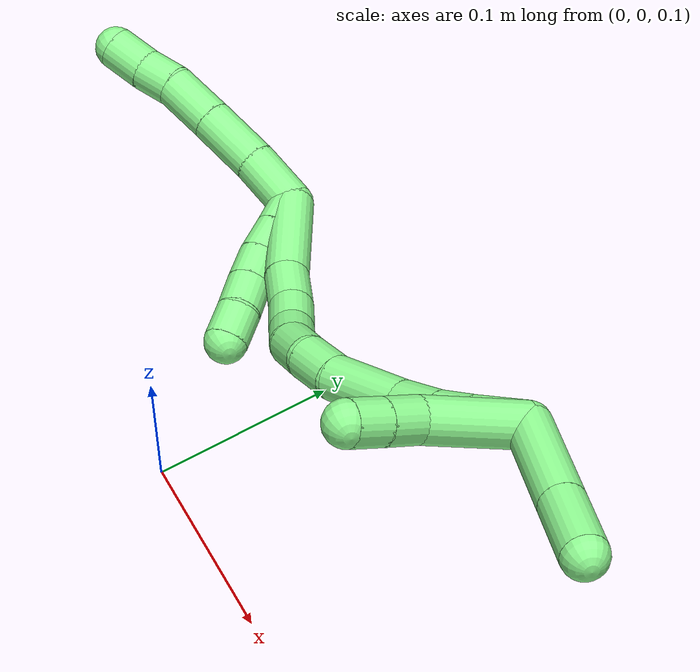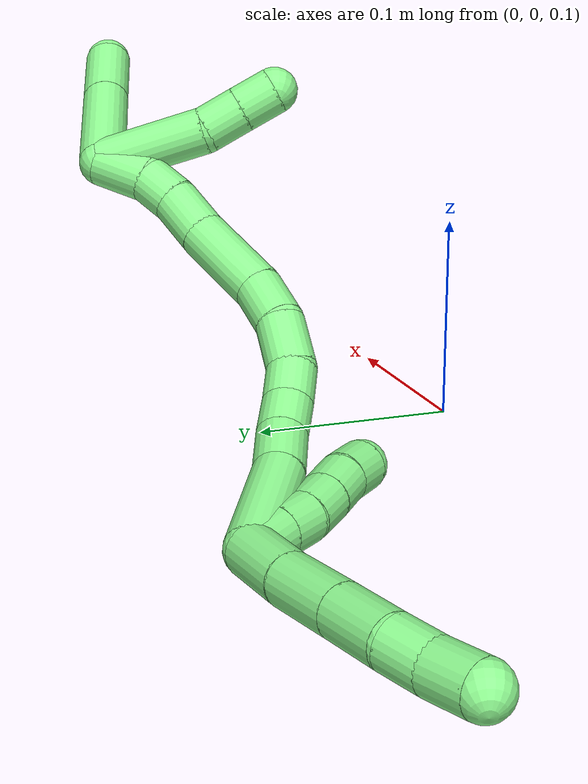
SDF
<sdf version="1.7">
 <world name="default">
  <model name="13">
   <static>0</static>
   <link name="13">
    <collision name="collision-cylinder-e_1_2_8">
     <pose>-0.005867 0.008015 -0.014325 -2.63146 -0.343252 1.17335</pose>
     <geometry><cylinder><radius>0.0125</radius><length>0.034863</length></cylinder></geometry>
     <surface>
      <friction><ode><mu>1.16</mu><mu2>1.16</mu2><slip1>0</slip1><slip2>0</slip2></ode></friction>
      <contact><ode><kp>1e+06</kp><kd>1</kd><max_vel>0</max_vel><min_depth>0.001</min_depth></ode></contact>
     </surface>
    </collision>
    <visual name="visual-cylinder-e_1_2_8">
     <pose>-0.005867 0.008015 -0.014325 -2.63146 -0.343252 1.17335</pose>
     <geometry><cylinder><radius>0.0125</radius><length>0.034863</length></cylinder></geometry>
     <material><ambient>0.564706 0.984314 0.572549 1</ambient></material>
    </visual>
    <collision name="collision-cylinder-e_2_8_9">
     <pose>-0.019365 0.024979 -0.043236 -2.59129 -0.419518 1.29224</pose>
     <geometry><cylinder><radius>0.0125</radius><length>0.037475</length></cylinder></geometry>
     <surface>
      <friction><ode><mu>1.16</mu><mu2>1.16</mu2><slip1>0</slip1><slip2>0</slip2></ode></friction>
      <contact><ode><kp>1e+06</kp><kd>1</kd><max_vel>0</max_vel><min_depth>0.001</min_depth></ode></contact>
     </surface>
    </collision>
    <visual name="visual-cylinder-e_2_8_9">
     <pose>-0.019365 0.024979 -0.043236 -2.59129 -0.419518 1.29224</pose>
     <geometry><cylinder><radius>0.0125</radius><length>0.037475</length></cylinder></geometry>
     <material><ambient>0.564706 0.984314 0.572549 1</ambient></material>
    </visual>
    <collision name="collision-cylinder-e_3_9_10">
     <pose>-0.03376 0.041429 -0.07044 -2.6053 -0.431712 1.34709</pose>
     <geometry><cylinder><radius>0.0125</radius><length>0.032324</length></cylinder></geometry>
     <surface>
      <friction><ode><mu>1.16</mu><mu2>1.16</mu2><slip1>0</slip1><slip2>0</slip2></ode></friction>
      <contact><ode><kp>1e+06</kp><kd>1</kd><max_vel>0</max_vel><min_depth>0.001</min_depth></ode></contact>
     </surface>
    </collision>
    <visual name="visual-cylinder-e_3_9_10">
     <pose>-0.03376 0.041429 -0.07044 -2.6053 -0.431712 1.34709</pose>
     <geometry><cylinder><radius>0.0125</radius><length>0.032324</length></cylinder></geometry>
     <material><ambient>0.564706 0.984314 0.572549 1</ambient></material>
    </visual>
    <collision name="collision-cylinder-e_4_10_11">
     <pose>-0.046777 0.052733 -0.090894 -2.68962 -0.622731 1.90097</pose>
     <geometry><cylinder><radius>0.0125</radius><length>0.021445</length></cylinder></geometry>
     <surface>
      <friction><ode><mu>1.16</mu><mu2>1.16</mu2><slip1>0</slip1><slip2>0</slip2></ode></friction>
      <contact><ode><kp>1e+06</kp><kd>1</kd><max_vel>0</max_vel><min_depth>0.001</min_depth></ode></contact>
     </surface>
    </collision>
    <visual name="visual-cylinder-e_4_10_11">
     <pose>-0.046777 0.052733 -0.090894 -2.68962 -0.622731 1.90097</pose>
     <geometry><cylinder><radius>0.0125</radius><length>0.021445</length></cylinder></geometry>
     <material><ambient>0.564706 0.984314 0.572549 1</ambient></material>
    </visual>
    <collision name="collision-cylinder-e_5_11_6">
     <pose>-0.059305 0.062097 -0.10724 -2.56289 -0.552942 1.52275</pose>
     <geometry><cylinder><radius>0.0125</radius><length>0.023892</length></cylinder></geometry>
     <surface>
      <friction><ode><mu>1.16</mu><mu2>1.16</mu2><slip1>0</slip1><slip2>0</slip2></ode></friction>
      <contact><ode><kp>1e+06</kp><kd>1</kd><max_vel>0</max_vel><min_depth>0.001</min_depth></ode></contact>
     </surface>
    </collision>
    <visual name="visual-cylinder-e_5_11_6">
     <pose>-0.059305 0.062097 -0.10724 -2.56289 -0.552942 1.52275</pose>
     <geometry><cylinder><radius>0.0125</radius><length>0.023892</length></cylinder></geometry>
     <material><ambient>0.564706 0.984314 0.572549 1</ambient></material>
    </visual>
    <collision name="collision-cylinder-e_1_2_12">
     <pose>-0.006495 -0.001462 0.007462 0.193452 -0.706925 -0.071568</pose>
     <geometry><cylinder><radius>0.0125</radius><length>0.02</length></cylinder></geometry>
     <surface>
      <friction><ode><mu>1.16</mu><mu2>1.16</mu2><slip1>0</slip1><slip2>0</slip2></ode></friction>
      <contact><ode><kp>1e+06</kp><kd>1</kd><max_vel>0</max_vel><min_depth>0.001</min_depth></ode></contact>
     </surface>
    </collision>
    <visual name="visual-cylinder-e_1_2_12">
     <pose>-0.006495 -0.001462 0.007462 0.193452 -0.706925 -0.071568</pose>
     <geometry><cylinder><radius>0.0125</radius><length>0.02</length></cylinder></geometry>
     <material><ambient>0.564706 0.984314 0.572549 1</ambient></material>
    </visual>
    <collision name="collision-cylinder-e_2_12_13">
     <pose>-0.019814 -0.004524 0.022056 0.220778 -0.751026 -0.087335</pose>
     <geometry><cylinder><radius>0.0125</radius><length>0.02</length></cylinder></geometry>
     <surface>
      <friction><ode><mu>1.16</mu><mu2>1.16</mu2><slip1>0</slip1><slip2>0</slip2></ode></friction>
      <contact><ode><kp>1e+06</kp><kd>1</kd><max_vel>0</max_vel><min_depth>0.001</min_depth></ode></contact>
     </surface>
    </collision>
    <visual name="visual-cylinder-e_2_12_13">
     <pose>-0.019814 -0.004524 0.022056 0.220778 -0.751026 -0.087335</pose>
     <geometry><cylinder><radius>0.0125</radius><length>0.02</length></cylinder></geometry>
     <material><ambient>0.564706 0.984314 0.572549 1</ambient></material>
    </visual>
    <collision name="collision-cylinder-e_3_13_14">
     <pose>-0.032184 -0.00766 0.037367 0.185474 -0.587891 -0.056292</pose>
     <geometry><cylinder><radius>0.0125</radius><length>0.02</length></cylinder></geometry>
     <surface>
      <friction><ode><mu>1.16</mu><mu2>1.16</mu2><slip1>0</slip1><slip2>0</slip2></ode></friction>
      <contact><ode><kp>1e+06</kp><kd>1</kd><max_vel>0</max_vel><min_depth>0.001</min_depth></ode></contact>
     </surface>
    </collision>
    <visual name="visual-cylinder-e_3_13_14">
     <pose>-0.032184 -0.00766 0.037367 0.185474 -0.587891 -0.056292</pose>
     <geometry><cylinder><radius>0.0125</radius><length>0.02</length></cylinder></geometry>
     <material><ambient>0.564706 0.984314 0.572549 1</ambient></material>
    </visual>
    <collision name="collision-cylinder-e_4_14_15">
     <pose>-0.042863 -0.010699 0.053994 0.176232 -0.539069 -0.048802</pose>
     <geometry><cylinder><radius>0.0125</radius><length>0.02</length></cylinder></geometry>
     <surface>
      <friction><ode><mu>1.16</mu><mu2>1.16</mu2><slip1>0</slip1><slip2>0</slip2></ode></friction>
      <contact><ode><kp>1e+06</kp><kd>1</kd><max_vel>0</max_vel><min_depth>0.001</min_depth></ode></contact>
     </surface>
    </collision>
    <visual name="visual-cylinder-e_4_14_15">
     <pose>-0.042863 -0.010699 0.053994 0.176232 -0.539069 -0.048802</pose>
     <geometry><cylinder><radius>0.0125</radius><length>0.02</length></cylinder></geometry>
     <material><ambient>0.564706 0.984314 0.572549 1</ambient></material>
    </visual>
    <collision name="collision-cylinder-e_5_15_5">
     <pose>-0.053955 -0.014642 0.070095 0.308534 -0.638362 -0.102691</pose>
     <geometry><cylinder><radius>0.0125</radius><length>0.02</length></cylinder></geometry>
     <surface>
      <friction><ode><mu>1.16</mu><mu2>1.16</mu2><slip1>0</slip1><slip2>0</slip2></ode></friction>
      <contact><ode><kp>1e+06</kp><kd>1</kd><max_vel>0</max_vel><min_depth>0.001</min_depth></ode></contact>
     </surface>
    </collision>
    <visual name="visual-cylinder-e_5_15_5">
     <pose>-0.053955 -0.014642 0.070095 0.308534 -0.638362 -0.102691</pose>
     <geometry><cylinder><radius>0.0125</radius><length>0.02</length></cylinder></geometry>
     <material><ambient>0.564706 0.984314 0.572549 1</ambient></material>
    </visual>
    <collision name="collision-cylinder-e_1_2_16">
     <pose>-0.008168 -0.003306 0.027456 0.119826 -0.287193 -0.017346</pose>
     <geometry><cylinder><radius>0.0125</radius><length>0.05767</length></cylinder></geometry>
     <surface>
      <friction><ode><mu>1.16</mu><mu2>1.16</mu2><slip1>0</slip1><slip2>0</slip2></ode></friction>
      <contact><ode><kp>1e+06</kp><kd>1</kd><max_vel>0</max_vel><min_depth>0.001</min_depth></ode></contact>
     </surface>
    </collision>
    <visual name="visual-cylinder-e_1_2_16">
     <pose>-0.008168 -0.003306 0.027456 0.119826 -0.287193 -0.017346</pose>
     <geometry><cylinder><radius>0.0125</radius><length>0.05767</length></cylinder></geometry>
     <material><ambient>0.564706 0.984314 0.572549 1</ambient></material>
    </visual>
    <collision name="collision-cylinder-e_2_16_17">
     <pose>-0.017936 -0.00737 0.067924 0.058236 -0.122174 -0.003563</pose>
     <geometry><cylinder><radius>0.0125</radius><length>0.026265</length></cylinder></geometry>
     <surface>
      <friction><ode><mu>1.16</mu><mu2>1.16</mu2><slip1>0</slip1><slip2>0</slip2></ode></friction>
      <contact><ode><kp>1e+06</kp><kd>1</kd><max_vel>0</max_vel><min_depth>0.001</min_depth></ode></contact>
     </surface>
    </collision>
    <visual name="visual-cylinder-e_2_16_17">
     <pose>-0.017936 -0.00737 0.067924 0.058236 -0.122174 -0.003563</pose>
     <geometry><cylinder><radius>0.0125</radius><length>0.026265</length></cylinder></geometry>
     <material><ambient>0.564706 0.984314 0.572549 1</ambient></material>
    </visual>
    <collision name="collision-cylinder-e_3_17_18">
     <pose>-0.021327 -0.007355 0.09146 -0.073361 -0.168046 0.006181</pose>
     <geometry><cylinder><radius>0.0125</radius><length>0.021405</length></cylinder></geometry>
     <surface>
      <friction><ode><mu>1.16</mu><mu2>1.16</mu2><slip1>0</slip1><slip2>0</slip2></ode></friction>
      <contact><ode><kp>1e+06</kp><kd>1</kd><max_vel>0</max_vel><min_depth>0.001</min_depth></ode></contact>
     </surface>
    </collision>
    <visual name="visual-cylinder-e_3_17_18">
     <pose>-0.021327 -0.007355 0.09146 -0.073361 -0.168046 0.006181</pose>
     <geometry><cylinder><radius>0.0125</radius><length>0.021405</length></cylinder></geometry>
     <material><ambient>0.564706 0.984314 0.572549 1</ambient></material>
    </visual>
    <collision name="collision-cylinder-e_4_18_19">
     <pose>-0.024038 -0.00377 0.111552 -0.285874 -0.092134 0.013269</pose>
     <geometry><cylinder><radius>0.0125</radius><length>0.020032</length></cylinder></geometry>
     <surface>
      <friction><ode><mu>1.16</mu><mu2>1.16</mu2><slip1>0</slip1><slip2>0</slip2></ode></friction>
      <contact><ode><kp>1e+06</kp><kd>1</kd><max_vel>0</max_vel><min_depth>0.001</min_depth></ode></contact>
     </surface>
    </collision>
    <visual name="visual-cylinder-e_4_18_19">
     <pose>-0.024038 -0.00377 0.111552 -0.285874 -0.092134 0.013269</pose>
     <geometry><cylinder><radius>0.0125</radius><length>0.020032</length></cylinder></geometry>
     <material><ambient>0.564706 0.984314 0.572549 1</ambient></material>
    </visual>
    <collision name="collision-cylinder-e_5_19_20">
     <pose>-0.021866 0.002538 0.133612 -0.272837 0.234131 -0.032284</pose>
     <geometry><cylinder><radius>0.0125</radius><length>0.02667</length></cylinder></geometry>
     <surface>
      <friction><ode><mu>1.16</mu><mu2>1.16</mu2><slip1>0</slip1><slip2>0</slip2></ode></friction>
      <contact><ode><kp>1e+06</kp><kd>1</kd><max_vel>0</max_vel><min_depth>0.001</min_depth></ode></contact>
     </surface>
    </collision>
    <visual name="visual-cylinder-e_5_19_20">
     <pose>-0.021866 0.002538 0.133612 -0.272837 0.234131 -0.032284</pose>
     <geometry><cylinder><radius>0.0125</radius><length>0.02667</length></cylinder></geometry>
     <material><ambient>0.564706 0.984314 0.572549 1</ambient></material>
    </visual>
    <collision name="collision-cylinder-e_6_20_21">
     <pose>-0.013834 0.006245 0.158047 -0.017747 0.391971 -0.003523</pose>
     <geometry><cylinder><radius>0.0125</radius><length>0.025853</length></cylinder></geometry>
     <surface>
      <friction><ode><mu>1.16</mu><mu2>1.16</mu2><slip1>0</slip1><slip2>0</slip2></ode></friction>
      <contact><ode><kp>1e+06</kp><kd>1</kd><max_vel>0</max_vel><min_depth>0.001</min_depth></ode></contact>
     </surface>
    </collision>
    <visual name="visual-cylinder-e_6_20_21">
     <pose>-0.013834 0.006245 0.158047 -0.017747 0.391971 -0.003523</pose>
     <geometry><cylinder><radius>0.0125</radius><length>0.025853</length></cylinder></geometry>
     <material><ambient>0.564706 0.984314 0.572549 1</ambient></material>
    </visual>
    <collision name="collision-cylinder-e_7_21_22">
     <pose>0.004949 0.006486 0.189083 -0.001508 0.627466 -0.000489</pose>
     <geometry><cylinder><radius>0.0125</radius><length>0.047166</length></cylinder></geometry>
     <surface>
      <friction><ode><mu>1.16</mu><mu2>1.16</mu2><slip1>0</slip1><slip2>0</slip2></ode></friction>
      <contact><ode><kp>1e+06</kp><kd>1</kd><max_vel>0</max_vel><min_depth>0.001</min_depth></ode></contact>
     </surface>
    </collision>
    <visual name="visual-cylinder-e_7_21_22">
     <pose>0.004949 0.006486 0.189083 -0.001508 0.627466 -0.000489</pose>
     <geometry><cylinder><radius>0.0125</radius><length>0.047166</length></cylinder></geometry>
     <material><ambient>0.564706 0.984314 0.572549 1</ambient></material>
    </visual>
    <collision name="collision-cylinder-e_8_22_23">
     <pose>0.026356 0.008019 0.218856 -0.139841 0.611312 -0.044191</pose>
     <geometry><cylinder><radius>0.0125</radius><length>0.026346</length></cylinder></geometry>
     <surface>
      <friction><ode><mu>1.16</mu><mu2>1.16</mu2><slip1>0</slip1><slip2>0</slip2></ode></friction>
      <contact><ode><kp>1e+06</kp><kd>1</kd><max_vel>0</max_vel><min_depth>0.001</min_depth></ode></contact>
     </surface>
    </collision>
    <visual name="visual-cylinder-e_8_22_23">
     <pose>0.026356 0.008019 0.218856 -0.139841 0.611312 -0.044191</pose>
     <geometry><cylinder><radius>0.0125</radius><length>0.026346</length></cylinder></geometry>
     <material><ambient>0.564706 0.984314 0.572549 1</ambient></material>
    </visual>
    <collision name="collision-cylinder-e_9_23_24">
     <pose>0.041209 0.010129 0.236457 -0.087406 0.809785 -0.037479</pose>
     <geometry><cylinder><radius>0.0125</radius><length>0.020141</length></cylinder></geometry>
     <surface>
      <friction><ode><mu>1.16</mu><mu2>1.16</mu2><slip1>0</slip1><slip2>0</slip2></ode></friction>
      <contact><ode><kp>1e+06</kp><kd>1</kd><max_vel>0</max_vel><min_depth>0.001</min_depth></ode></contact>
     </surface>
    </collision>
    <visual name="visual-cylinder-e_9_23_24">
     <pose>0.041209 0.010129 0.236457 -0.087406 0.809785 -0.037479</pose>
     <geometry><cylinder><radius>0.0125</radius><length>0.020141</length></cylinder></geometry>
     <material><ambient>0.564706 0.984314 0.572549 1</ambient></material>
    </visual>
    <collision name="collision-cylinder-e_10_24_1">
     <pose>0.060686 0.008871 0.250476 0.256739 1.02856 0.1456</pose>
     <geometry><cylinder><radius>0.0125</radius><length>0.028451</length></cylinder></geometry>
     <surface>
      <friction><ode><mu>1.16</mu><mu2>1.16</mu2><slip1>0</slip1><slip2>0</slip2></ode></friction>
      <contact><ode><kp>1e+06</kp><kd>1</kd><max_vel>0</max_vel><min_depth>0.001</min_depth></ode></contact>
     </surface>
    </collision>
    <visual name="visual-cylinder-e_10_24_1">
     <pose>0.060686 0.008871 0.250476 0.256739 1.02856 0.1456</pose>
     <geometry><cylinder><radius>0.0125</radius><length>0.028451</length></cylinder></geometry>
     <material><ambient>0.564706 0.984314 0.572549 1</ambient></material>
    </visual>
    <collision name="collision-cylinder-e_1_1_25">
     <pose>0.047799 0.021619 0.25846 -1.51042 -1.04231 0.990946</pose>
     <geometry><cylinder><radius>0.0125</radius><length>0.058066</length></cylinder></geometry>
     <surface>
      <friction><ode><mu>1.16</mu><mu2>1.16</mu2><slip1>0</slip1><slip2>0</slip2></ode></friction>
      <contact><ode><kp>1e+06</kp><kd>1</kd><max_vel>0</max_vel><min_depth>0.001</min_depth></ode></contact>
     </surface>
    </collision>
    <visual name="visual-cylinder-e_1_1_25">
     <pose>0.047799 0.021619 0.25846 -1.51042 -1.04231 0.990946</pose>
     <geometry><cylinder><radius>0.0125</radius><length>0.058066</length></cylinder></geometry>
     <material><ambient>0.564706 0.984314 0.572549 1</ambient></material>
    </visual>
    <collision name="collision-cylinder-e_2_25_26">
     <pose>0.014402 0.04223 0.26254 -1.08112 -0.886106 0.554907</pose>
     <geometry><cylinder><radius>0.0125</radius><length>0.021497</length></cylinder></geometry>
     <surface>
      <friction><ode><mu>1.16</mu><mu2>1.16</mu2><slip1>0</slip1><slip2>0</slip2></ode></friction>
      <contact><ode><kp>1e+06</kp><kd>1</kd><max_vel>0</max_vel><min_depth>0.001</min_depth></ode></contact>
     </surface>
    </collision>
    <visual name="visual-cylinder-e_2_25_26">
     <pose>0.014402 0.04223 0.26254 -1.08112 -0.886106 0.554907</pose>
     <geometry><cylinder><radius>0.0125</radius><length>0.021497</length></cylinder></geometry>
     <material><ambient>0.564706 0.984314 0.572549 1</ambient></material>
    </visual>
    <collision name="collision-cylinder-e_3_26_4">
     <pose>-0.001884 0.053956 0.268613 -1.1054 -0.892994 0.574281</pose>
     <geometry><cylinder><radius>0.0125</radius><length>0.020437</length></cylinder></geometry>
     <surface>
      <friction><ode><mu>1.16</mu><mu2>1.16</mu2><slip1>0</slip1><slip2>0</slip2></ode></friction>
      <contact><ode><kp>1e+06</kp><kd>1</kd><max_vel>0</max_vel><min_depth>0.001</min_depth></ode></contact>
     </surface>
    </collision>
    <visual name="visual-cylinder-e_3_26_4">
     <pose>-0.001884 0.053956 0.268613 -1.1054 -0.892994 0.574281</pose>
     <geometry><cylinder><radius>0.0125</radius><length>0.020437</length></cylinder></geometry>
     <material><ambient>0.564706 0.984314 0.572549 1</ambient></material>
    </visual>
    <collision name="collision-cylinder-e_1_1_27">
     <pose>0.072843 0.006998 0.287949 0.000298 -0.000921 0</pose>
     <geometry><cylinder><radius>0.0125</radius><length>0.060746</length></cylinder></geometry>
     <surface>
      <friction><ode><mu>1.16</mu><mu2>1.16</mu2><slip1>0</slip1><slip2>0</slip2></ode></friction>
      <contact><ode><kp>1e+06</kp><kd>1</kd><max_vel>0</max_vel><min_depth>0.001</min_depth></ode></contact>
     </surface>
    </collision>
    <visual name="visual-cylinder-e_1_1_27">
     <pose>0.072843 0.006998 0.287949 0.000298 -0.000921 0</pose>
     <geometry><cylinder><radius>0.0125</radius><length>0.060746</length></cylinder></geometry>
     <material><ambient>0.564706 0.984314 0.572549 1</ambient></material>
    </visual>
    <collision name="collision-cylinder-e_2_27_3">
     <pose>0.072781 0.00752 0.337942 -0.027059 -0.00177 2.4e-05</pose>
     <geometry><cylinder><radius>0.0125</radius><length>0.039254</length></cylinder></geometry>
     <surface>
      <friction><ode><mu>1.16</mu><mu2>1.16</mu2><slip1>0</slip1><slip2>0</slip2></ode></friction>
      <contact><ode><kp>1e+06</kp><kd>1</kd><max_vel>0</max_vel><min_depth>0.001</min_depth></ode></contact>
     </surface>
    </collision>
    <visual name="visual-cylinder-e_2_27_3">
     <pose>0.072781 0.00752 0.337942 -0.027059 -0.00177 2.4e-05</pose>
     <geometry><cylinder><radius>0.0125</radius><length>0.039254</length></cylinder></geometry>
     <material><ambient>0.564706 0.984314 0.572549 1</ambient></material>
    </visual>
    <collision name="collision-sphere-3">
     <pose>0.072746 0.008051 0.357562 0 -0 0</pose>
     <geometry><sphere><radius>0.0125</radius></sphere></geometry>
     <surface>
      <friction><ode><mu>1.16</mu><mu2>1.16</mu2><slip1>0</slip1><slip2>0</slip2></ode></friction>
      <contact><ode><kp>1e+06</kp><kd>1</kd><max_vel>0</max_vel><min_depth>0.001</min_depth></ode></contact>
     </surface>
    </collision>
    <visual name="visual-sphere-3">
     <pose>0.072746 0.008051 0.357562 0 -0 0</pose>
     <geometry><sphere><radius>0.0125</radius></sphere></geometry>
     <material><ambient>0.564706 0.984314 0.572549 1</ambient></material>
    </visual>
    <collision name="collision-sphere-27">
     <pose>0.072815 0.006988 0.318322 0 -0 0</pose>
     <geometry><sphere><radius>0.0125</radius></sphere></geometry>
     <surface>
      <friction><ode><mu>1.16</mu><mu2>1.16</mu2><slip1>0</slip1><slip2>0</slip2></ode></friction>
      <contact><ode><kp>1e+06</kp><kd>1</kd><max_vel>0</max_vel><min_depth>0.001</min_depth></ode></contact>
     </surface>
    </collision>
    <visual name="visual-sphere-27">
     <pose>0.072815 0.006988 0.318322 0 -0 0</pose>
     <geometry><sphere><radius>0.0125</radius></sphere></geometry>
     <material><ambient>0.564706 0.984314 0.572549 1</ambient></material>
    </visual>
    <collision name="collision-sphere-4">
     <pose>-0.009844 0.059682 0.271489 0 -0 0</pose>
     <geometry><sphere><radius>0.0125</radius></sphere></geometry>
     <surface>
      <friction><ode><mu>1.16</mu><mu2>1.16</mu2><slip1>0</slip1><slip2>0</slip2></ode></friction>
      <contact><ode><kp>1e+06</kp><kd>1</kd><max_vel>0</max_vel><min_depth>0.001</min_depth></ode></contact>
     </surface>
    </collision>
    <visual name="visual-sphere-4">
     <pose>-0.009844 0.059682 0.271489 0 -0 0</pose>
     <geometry><sphere><radius>0.0125</radius></sphere></geometry>
     <material><ambient>0.564706 0.984314 0.572549 1</ambient></material>
    </visual>
    <collision name="collision-sphere-26">
     <pose>0.006076 0.048229 0.265738 0 -0 0</pose>
     <geometry><sphere><radius>0.0125</radius></sphere></geometry>
     <surface>
      <friction><ode><mu>1.16</mu><mu2>1.16</mu2><slip1>0</slip1><slip2>0</slip2></ode></friction>
      <contact><ode><kp>1e+06</kp><kd>1</kd><max_vel>0</max_vel><min_depth>0.001</min_depth></ode></contact>
     </surface>
    </collision>
    <visual name="visual-sphere-26">
     <pose>0.006076 0.048229 0.265738 0 -0 0</pose>
     <geometry><sphere><radius>0.0125</radius></sphere></geometry>
     <material><ambient>0.564706 0.984314 0.572549 1</ambient></material>
    </visual>
    <collision name="collision-sphere-25">
     <pose>0.022727 0.036232 0.259343 0 -0 0</pose>
     <geometry><sphere><radius>0.0125</radius></sphere></geometry>
     <surface>
      <friction><ode><mu>1.16</mu><mu2>1.16</mu2><slip1>0</slip1><slip2>0</slip2></ode></friction>
      <contact><ode><kp>1e+06</kp><kd>1</kd><max_vel>0</max_vel><min_depth>0.001</min_depth></ode></contact>
     </surface>
    </collision>
    <visual name="visual-sphere-25">
     <pose>0.022727 0.036232 0.259343 0 -0 0</pose>
     <geometry><sphere><radius>0.0125</radius></sphere></geometry>
     <material><ambient>0.564706 0.984314 0.572549 1</ambient></material>
    </visual>
    <collision name="collision-sphere-1">
     <pose>0.072871 0.007007 0.257577 0 -0 0</pose>
     <geometry><sphere><radius>0.0125</radius></sphere></geometry>
     <surface>
      <friction><ode><mu>1.16</mu><mu2>1.16</mu2><slip1>0</slip1><slip2>0</slip2></ode></friction>
      <contact><ode><kp>1e+06</kp><kd>1</kd><max_vel>0</max_vel><min_depth>0.001</min_depth></ode></contact>
     </surface>
    </collision>
    <visual name="visual-sphere-1">
     <pose>0.072871 0.007007 0.257577 0 -0 0</pose>
     <geometry><sphere><radius>0.0125</radius></sphere></geometry>
     <material><ambient>0.564706 0.984314 0.572549 1</ambient></material>
    </visual>
    <collision name="collision-sphere-24">
     <pose>0.048501 0.010735 0.243376 0 -0 0</pose>
     <geometry><sphere><radius>0.0125</radius></sphere></geometry>
     <surface>
      <friction><ode><mu>1.16</mu><mu2>1.16</mu2><slip1>0</slip1><slip2>0</slip2></ode></friction>
      <contact><ode><kp>1e+06</kp><kd>1</kd><max_vel>0</max_vel><min_depth>0.001</min_depth></ode></contact>
     </surface>
    </collision>
    <visual name="visual-sphere-24">
     <pose>0.048501 0.010735 0.243376 0 -0 0</pose>
     <geometry><sphere><radius>0.0125</radius></sphere></geometry>
     <material><ambient>0.564706 0.984314 0.572549 1</ambient></material>
    </visual>
    <collision name="collision-sphere-23">
     <pose>0.033916 0.009522 0.229538 0 -0 0</pose>
     <geometry><sphere><radius>0.0125</radius></sphere></geometry>
     <surface>
      <friction><ode><mu>1.16</mu><mu2>1.16</mu2><slip1>0</slip1><slip2>0</slip2></ode></friction>
      <contact><ode><kp>1e+06</kp><kd>1</kd><max_vel>0</max_vel><min_depth>0.001</min_depth></ode></contact>
     </surface>
    </collision>
    <visual name="visual-sphere-23">
     <pose>0.033916 0.009522 0.229538 0 -0 0</pose>
     <geometry><sphere><radius>0.0125</radius></sphere></geometry>
     <material><ambient>0.564706 0.984314 0.572549 1</ambient></material>
    </visual>
    <collision name="collision-sphere-22">
     <pose>0.018795 0.006515 0.208174 0 -0 0</pose>
     <geometry><sphere><radius>0.0125</radius></sphere></geometry>
     <surface>
      <friction><ode><mu>1.16</mu><mu2>1.16</mu2><slip1>0</slip1><slip2>0</slip2></ode></friction>
      <contact><ode><kp>1e+06</kp><kd>1</kd><max_vel>0</max_vel><min_depth>0.001</min_depth></ode></contact>
     </surface>
    </collision>
    <visual name="visual-sphere-22">
     <pose>0.018795 0.006515 0.208174 0 -0 0</pose>
     <geometry><sphere><radius>0.0125</radius></sphere></geometry>
     <material><ambient>0.564706 0.984314 0.572549 1</ambient></material>
    </visual>
    <collision name="collision-sphere-21">
     <pose>-0.008896 0.006457 0.169992 0 -0 0</pose>
     <geometry><sphere><radius>0.0125</radius></sphere></geometry>
     <surface>
      <friction><ode><mu>1.16</mu><mu2>1.16</mu2><slip1>0</slip1><slip2>0</slip2></ode></friction>
      <contact><ode><kp>1e+06</kp><kd>1</kd><max_vel>0</max_vel><min_depth>0.001</min_depth></ode></contact>
     </surface>
    </collision>
    <visual name="visual-sphere-21">
     <pose>-0.008896 0.006457 0.169992 0 -0 0</pose>
     <geometry><sphere><radius>0.0125</radius></sphere></geometry>
     <material><ambient>0.564706 0.984314 0.572549 1</ambient></material>
    </visual>
    <collision name="collision-sphere-6">
     <pose>-0.065579 0.067657 -0.115751 0 -0 0</pose>
     <geometry><sphere><radius>0.0125</radius></sphere></geometry>
     <surface>
      <friction><ode><mu>1.16</mu><mu2>1.16</mu2><slip1>0</slip1><slip2>0</slip2></ode></friction>
      <contact><ode><kp>1e+06</kp><kd>1</kd><max_vel>0</max_vel><min_depth>0.001</min_depth></ode></contact>
     </surface>
    </collision>
    <visual name="visual-sphere-6">
     <pose>-0.065579 0.067657 -0.115751 0 -0 0</pose>
     <geometry><sphere><radius>0.0125</radius></sphere></geometry>
     <material><ambient>0.564706 0.984314 0.572549 1</ambient></material>
    </visual>
    <collision name="collision-sphere-11">
     <pose>-0.053031 0.056537 -0.09873 0 -0 0</pose>
     <geometry><sphere><radius>0.0125</radius></sphere></geometry>
     <surface>
      <friction><ode><mu>1.16</mu><mu2>1.16</mu2><slip1>0</slip1><slip2>0</slip2></ode></friction>
      <contact><ode><kp>1e+06</kp><kd>1</kd><max_vel>0</max_vel><min_depth>0.001</min_depth></ode></contact>
     </surface>
    </collision>
    <visual name="visual-sphere-11">
     <pose>-0.053031 0.056537 -0.09873 0 -0 0</pose>
     <geometry><sphere><radius>0.0125</radius></sphere></geometry>
     <material><ambient>0.564706 0.984314 0.572549 1</ambient></material>
    </visual>
    <collision name="collision-sphere-10">
     <pose>-0.040523 0.048929 -0.083059 0 -0 0</pose>
     <geometry><sphere><radius>0.0125</radius></sphere></geometry>
     <surface>
      <friction><ode><mu>1.16</mu><mu2>1.16</mu2><slip1>0</slip1><slip2>0</slip2></ode></friction>
      <contact><ode><kp>1e+06</kp><kd>1</kd><max_vel>0</max_vel><min_depth>0.001</min_depth></ode></contact>
     </surface>
    </collision>
    <visual name="visual-sphere-10">
     <pose>-0.040523 0.048929 -0.083059 0 -0 0</pose>
     <geometry><sphere><radius>0.0125</radius></sphere></geometry>
     <material><ambient>0.564706 0.984314 0.572549 1</ambient></material>
    </visual>
    <collision name="collision-sphere-9">
     <pose>-0.026998 0.033928 -0.057822 0 -0 0</pose>
     <geometry><sphere><radius>0.0125</radius></sphere></geometry>
     <surface>
      <friction><ode><mu>1.16</mu><mu2>1.16</mu2><slip1>0</slip1><slip2>0</slip2></ode></friction>
      <contact><ode><kp>1e+06</kp><kd>1</kd><max_vel>0</max_vel><min_depth>0.001</min_depth></ode></contact>
     </surface>
    </collision>
    <visual name="visual-sphere-9">
     <pose>-0.026998 0.033928 -0.057822 0 -0 0</pose>
     <geometry><sphere><radius>0.0125</radius></sphere></geometry>
     <material><ambient>0.564706 0.984314 0.572549 1</ambient></material>
    </visual>
    <collision name="collision-sphere-2">
     <geometry><sphere><radius>0.0125</radius></sphere></geometry>
     <surface>
      <friction><ode><mu>1.16</mu><mu2>1.16</mu2><slip1>0</slip1><slip2>0</slip2></ode></friction>
      <contact><ode><kp>1e+06</kp><kd>1</kd><max_vel>0</max_vel><min_depth>0.001</min_depth></ode></contact>
     </surface>
    </collision>
    <visual name="visual-sphere-2">
     <geometry><sphere><radius>0.0125</radius></sphere></geometry>
     <material><ambient>0.564706 0.984314 0.572549 1</ambient></material>
    </visual>
    <collision name="collision-sphere-19">
     <pose>-0.02496 -0.000957 0.12112 0 -0 0</pose>
     <geometry><sphere><radius>0.0125</radius></sphere></geometry>
     <surface>
      <friction><ode><mu>1.16</mu><mu2>1.16</mu2><slip1>0</slip1><slip2>0</slip2></ode></friction>
      <contact><ode><kp>1e+06</kp><kd>1</kd><max_vel>0</max_vel><min_depth>0.001</min_depth></ode></contact>
     </surface>
    </collision>
    <visual name="visual-sphere-19">
     <pose>-0.02496 -0.000957 0.12112 0 -0 0</pose>
     <geometry><sphere><radius>0.0125</radius></sphere></geometry>
     <material><ambient>0.564706 0.984314 0.572549 1</ambient></material>
    </visual>
    <collision name="collision-sphere-8">
     <pose>-0.011733 0.01603 -0.028649 0 -0 0</pose>
     <geometry><sphere><radius>0.0125</radius></sphere></geometry>
     <surface>
      <friction><ode><mu>1.16</mu><mu2>1.16</mu2><slip1>0</slip1><slip2>0</slip2></ode></friction>
      <contact><ode><kp>1e+06</kp><kd>1</kd><max_vel>0</max_vel><min_depth>0.001</min_depth></ode></contact>
     </surface>
    </collision>
    <visual name="visual-sphere-8">
     <pose>-0.011733 0.01603 -0.028649 0 -0 0</pose>
     <geometry><sphere><radius>0.0125</radius></sphere></geometry>
     <material><ambient>0.564706 0.984314 0.572549 1</ambient></material>
    </visual>
    <collision name="collision-sphere-12">
     <pose>-0.01299 -0.002924 0.014924 0 -0 0</pose>
     <geometry><sphere><radius>0.0125</radius></sphere></geometry>
     <surface>
      <friction><ode><mu>1.16</mu><mu2>1.16</mu2><slip1>0</slip1><slip2>0</slip2></ode></friction>
      <contact><ode><kp>1e+06</kp><kd>1</kd><max_vel>0</max_vel><min_depth>0.001</min_depth></ode></contact>
     </surface>
    </collision>
    <visual name="visual-sphere-12">
     <pose>-0.01299 -0.002924 0.014924 0 -0 0</pose>
     <geometry><sphere><radius>0.0125</radius></sphere></geometry>
     <material><ambient>0.564706 0.984314 0.572549 1</ambient></material>
    </visual>
    <collision name="collision-sphere-13">
     <pose>-0.026638 -0.006125 0.029189 0 -0 0</pose>
     <geometry><sphere><radius>0.0125</radius></sphere></geometry>
     <surface>
      <friction><ode><mu>1.16</mu><mu2>1.16</mu2><slip1>0</slip1><slip2>0</slip2></ode></friction>
      <contact><ode><kp>1e+06</kp><kd>1</kd><max_vel>0</max_vel><min_depth>0.001</min_depth></ode></contact>
     </surface>
    </collision>
    <visual name="visual-sphere-13">
     <pose>-0.026638 -0.006125 0.029189 0 -0 0</pose>
     <geometry><sphere><radius>0.0125</radius></sphere></geometry>
     <material><ambient>0.564706 0.984314 0.572549 1</ambient></material>
    </visual>
    <collision name="collision-sphere-14">
     <pose>-0.03773 -0.009194 0.045545 0 -0 0</pose>
     <geometry><sphere><radius>0.0125</radius></sphere></geometry>
     <surface>
      <friction><ode><mu>1.16</mu><mu2>1.16</mu2><slip1>0</slip1><slip2>0</slip2></ode></friction>
      <contact><ode><kp>1e+06</kp><kd>1</kd><max_vel>0</max_vel><min_depth>0.001</min_depth></ode></contact>
     </surface>
    </collision>
    <visual name="visual-sphere-14">
     <pose>-0.03773 -0.009194 0.045545 0 -0 0</pose>
     <geometry><sphere><radius>0.0125</radius></sphere></geometry>
     <material><ambient>0.564706 0.984314 0.572549 1</ambient></material>
    </visual>
    <collision name="collision-sphere-15">
     <pose>-0.047997 -0.012203 0.062443 0 -0 0</pose>
     <geometry><sphere><radius>0.0125</radius></sphere></geometry>
     <surface>
      <friction><ode><mu>1.16</mu><mu2>1.16</mu2><slip1>0</slip1><slip2>0</slip2></ode></friction>
      <contact><ode><kp>1e+06</kp><kd>1</kd><max_vel>0</max_vel><min_depth>0.001</min_depth></ode></contact>
     </surface>
    </collision>
    <visual name="visual-sphere-15">
     <pose>-0.047997 -0.012203 0.062443 0 -0 0</pose>
     <geometry><sphere><radius>0.0125</radius></sphere></geometry>
     <material><ambient>0.564706 0.984314 0.572549 1</ambient></material>
    </visual>
    <collision name="collision-sphere-5">
     <pose>-0.059914 -0.017081 0.077746 0 -0 0</pose>
     <geometry><sphere><radius>0.0125</radius></sphere></geometry>
     <surface>
      <friction><ode><mu>1.16</mu><mu2>1.16</mu2><slip1>0</slip1><slip2>0</slip2></ode></friction>
      <contact><ode><kp>1e+06</kp><kd>1</kd><max_vel>0</max_vel><min_depth>0.001</min_depth></ode></contact>
     </surface>
    </collision>
    <visual name="visual-sphere-5">
     <pose>-0.059914 -0.017081 0.077746 0 -0 0</pose>
     <geometry><sphere><radius>0.0125</radius></sphere></geometry>
     <material><ambient>0.564706 0.984314 0.572549 1</ambient></material>
    </visual>
    <collision name="collision-sphere-16">
     <pose>-0.016336 -0.006611 0.054911 0 -0 0</pose>
     <geometry><sphere><radius>0.0125</radius></sphere></geometry>
     <surface>
      <friction><ode><mu>1.16</mu><mu2>1.16</mu2><slip1>0</slip1><slip2>0</slip2></ode></friction>
      <contact><ode><kp>1e+06</kp><kd>1</kd><max_vel>0</max_vel><min_depth>0.001</min_depth></ode></contact>
     </surface>
    </collision>
    <visual name="visual-sphere-16">
     <pose>-0.016336 -0.006611 0.054911 0 -0 0</pose>
     <geometry><sphere><radius>0.0125</radius></sphere></geometry>
     <material><ambient>0.564706 0.984314 0.572549 1</ambient></material>
    </visual>
    <collision name="collision-sphere-17">
     <pose>-0.019537 -0.008129 0.080936 0 -0 0</pose>
     <geometry><sphere><radius>0.0125</radius></sphere></geometry>
     <surface>
      <friction><ode><mu>1.16</mu><mu2>1.16</mu2><slip1>0</slip1><slip2>0</slip2></ode></friction>
      <contact><ode><kp>1e+06</kp><kd>1</kd><max_vel>0</max_vel><min_depth>0.001</min_depth></ode></contact>
     </surface>
    </collision>
    <visual name="visual-sphere-17">
     <pose>-0.019537 -0.008129 0.080936 0 -0 0</pose>
     <geometry><sphere><radius>0.0125</radius></sphere></geometry>
     <material><ambient>0.564706 0.984314 0.572549 1</ambient></material>
    </visual>
    <collision name="collision-sphere-18">
     <pose>-0.023117 -0.006582 0.101983 0 -0 0</pose>
     <geometry><sphere><radius>0.0125</radius></sphere></geometry>
     <surface>
      <friction><ode><mu>1.16</mu><mu2>1.16</mu2><slip1>0</slip1><slip2>0</slip2></ode></friction>
      <contact><ode><kp>1e+06</kp><kd>1</kd><max_vel>0</max_vel><min_depth>0.001</min_depth></ode></contact>
     </surface>
    </collision>
    <visual name="visual-sphere-18">
     <pose>-0.023117 -0.006582 0.101983 0 -0 0</pose>
     <geometry><sphere><radius>0.0125</radius></sphere></geometry>
     <material><ambient>0.564706 0.984314 0.572549 1</ambient></material>
    </visual>
    <collision name="collision-sphere-20">
     <pose>-0.018772 0.006033 0.146103 0 -0 0</pose>
     <geometry><sphere><radius>0.0125</radius></sphere></geometry>
     <surface>
      <friction><ode><mu>1.16</mu><mu2>1.16</mu2><slip1>0</slip1><slip2>0</slip2></ode></friction>
      <contact><ode><kp>1e+06</kp><kd>1</kd><max_vel>0</max_vel><min_depth>0.001</min_depth></ode></contact>
     </surface>
    </collision>
    <visual name="visual-sphere-20">
     <pose>-0.018772 0.006033 0.146103 0 -0 0</pose>
     <geometry><sphere><radius>0.0125</radius></sphere></geometry>
     <material><ambient>0.564706 0.984314 0.572549 1</ambient></material>
    </visual>
    <inertial>
     <pose>0.004592 0.011948 0.12479 0 -0 0</pose>
     <mass>0.75</mass>
     <inertia><ixx>9.9e-05</ixx><ixy>0</ixy><ixz>0</ixz><iyy>0.000131</iyy><iyz>0</iyz><izz>3.2e-05</izz></inertia>
    </inertial>
   </link>
   <pose>-0.116943 0.144814 0.091241 1.13152 -0.176602 1.36336</pose>
  </model>
 </world>
</sdf>
